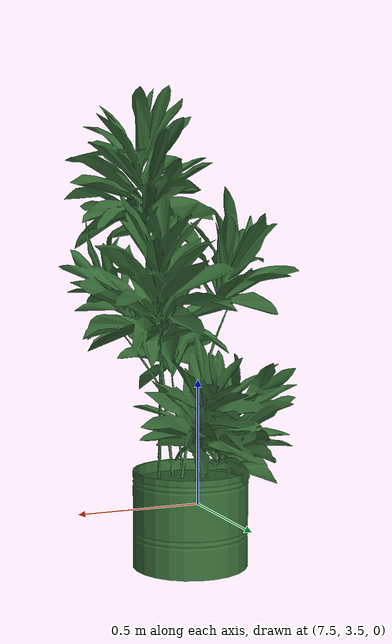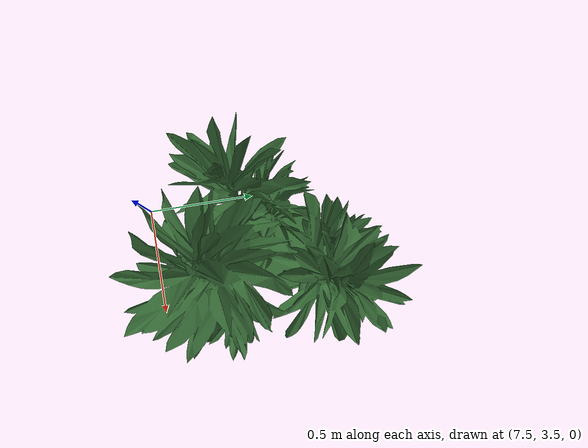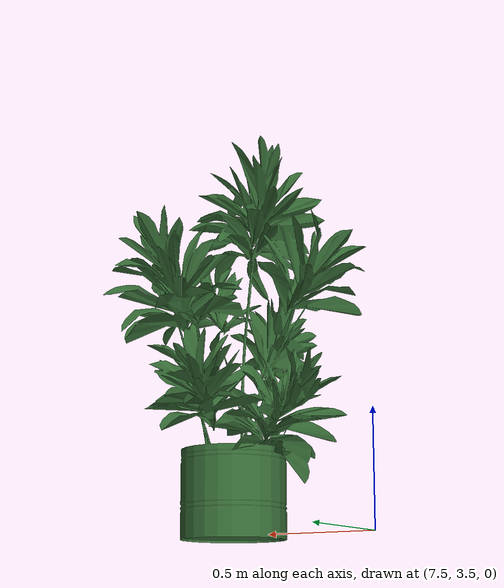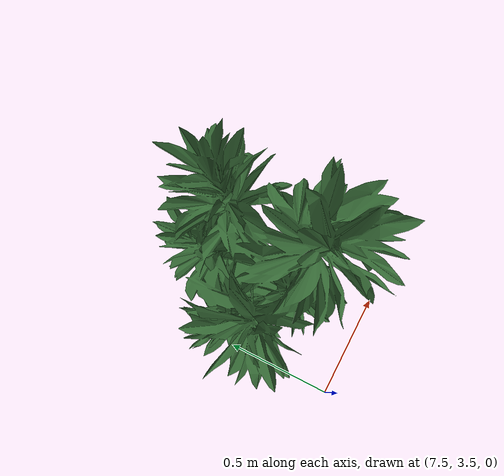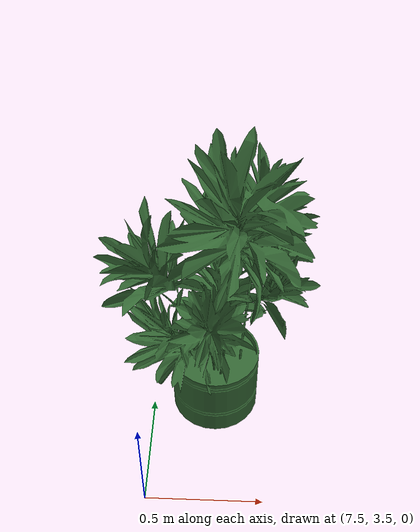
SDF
<?xml version="1.0" ?>
<sdf version="1.8">
  <model name="plant">
    <static>true</static>
    <link name="plant_link">
      <visual name="plant_visual">
        <geometry>
          <mesh>
            <uri>model://plant/plant.stl</uri>
            <scale>0.03 0.03 0.03</scale>
          </mesh>
        </geometry>
        <material>
          <ambient>0.2 0.4 0.2 1</ambient>
          <diffuse>0.2 0.4 0.2 1</diffuse>
        </material>
      </visual>
      <collision name="plant_collision">
        <geometry>
          <mesh>
            <uri>model://plant/plant.stl</uri>
            <scale>0.03 0.03 0.03</scale>
          </mesh>
        </geometry>
      </collision>
    </link>
  </model>
</sdf>
